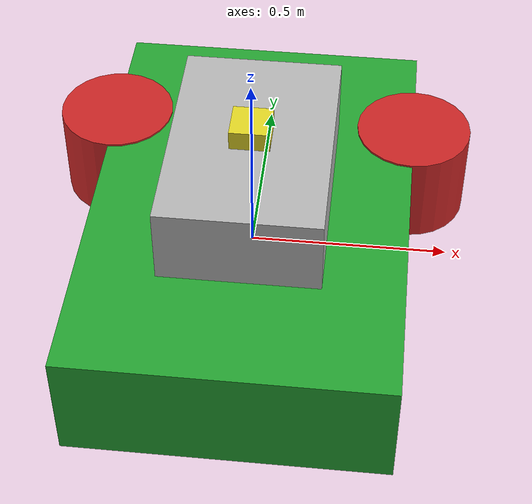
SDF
<sdf version='1.7'>
  <model name='car_HW5'>
    <link name='car_body'>
      <inertial>
        <pose>0 0 0 0 -0 0</pose>
        <mass>2.88</mass>
        <inertia>
          <ixx>0.3672</ixx>
          <ixy>0</ixy>
          <ixz>0</ixz>
          <iyy>0.1752</iyy>
          <iyz>0</iyz>
          <izz>0.4992</izz>
        </inertia>
      </inertial>
      <collision name='car_body_collision'>
        <pose>0 0 0 0 -0 0</pose>
        <geometry>
          <box>
            <size>0.8 1.2 0.3</size>
          </box>
        </geometry>
        <surface>
          <friction>
            <ode>
              <mu>0</mu>
              <mu2>0</mu2>
            </ode>
            <torsional>
              <ode/>
            </torsional>
          </friction>
          <contact>
            <ode/>
          </contact>
          <bounce/>
        </surface>
      </collision>
      <visual name='car_body_visual'>
        <pose>0 0 0 0 -0 0</pose>
        <geometry>
          <box>
            <size>0.8 1.2 0.3</size>
          </box>
        </geometry>
        <material>
          <script>
            <uri>file://media/materials/scripts/gazebo.material</uri>
            <name>Gazebo/Green</name>
          </script>
        </material>
      </visual>
    </link>

    <joint name='body_to_head' type='fixed'>
      <pose relative_to='car_body'>0 0 0.25 0 0 0</pose>
      <parent>car_body</parent>
      <child>car_head</child>
    </joint>
    <link name='car_head'>
      <pose relative_to='car_body'>0 0 0.25 0 0 0</pose>
      <inertial>
        <pose>0 0 0 0 0 0</pose>
        <mass>1</mass>
        <inertia>
          <ixx>0.027</ixx>
          <ixy>0</ixy>
          <ixz>0</ixz>
          <iyy>0.015</iyy>
          <iyz>0</iyz>
          <izz>0.0312</izz>
        </inertia>
      </inertial>
      <collision name='car_head_collision'>
        <pose>0 0 0 0 0 0</pose>
        <geometry>
          <box>
            <size>0.4 0.6 0.2</size>
          </box>
        </geometry>
      </collision>
      <visual name='car_head_visual'>
        <pose>0 0 0 0 0 0</pose>
        <geometry>
          <box>
            <size>0.4 0.6 0.2</size>
          </box>
        </geometry>
      </visual>
    </link>

    <joint name='body_to_F1' type='fixed'>
      <pose relative_to='car_body'>0.4 0.3 0.03 0 0 0</pose>
      <parent>car_body</parent>
      <child>F1</child>
    </joint>
    <link name='F1'>
      <pose relative_to='car_body'>0.4 0.3 0.03 0 0 0</pose>
      <inertial>
        <pose>0 0 0 0 0 0</pose>
        <mass>1</mass>
        <inertia>
          <ixx>0.008958</ixx>
          <ixy>0</ixy>
          <ixz>0</ixz>
          <iyy>0.008958</iyy>
          <iyz>0</iyz>
          <izz>0.01125</izz>
        </inertia>
      </inertial>
      <collision name='F1_collision'>
        <pose>0 0 0 0 0 0</pose>
        <geometry>
          <cylinder>
            <length>0.25</length>
            <radius>0.15</radius>
          </cylinder>
        </geometry>
        <surface>
          <friction>
            <ode>
              <mu>0</mu>
              <mu2>0</mu2>
            </ode>
            <torsional>
              <ode/>
            </torsional>
          </friction>
          <contact>
            <ode/>
          </contact>
          <bounce/>
        </surface>
      </collision>
      <visual name='F1_visual'>
        <pose>0 0 0 0 0 0</pose>
        <geometry>
          <cylinder>
            <length>0.25</length>
            <radius>0.15</radius>
          </cylinder>
        </geometry>
        <material>
          <script>
            <uri>file://media/materials/scripts/gazebo.material</uri>
            <name>Gazebo/Red</name>
          </script>
        </material>
      </visual>
    </link>

    <joint name='body_to_F2' type='fixed'>
      <pose relative_to='car_body'>-0.4 0.3 0.03 0 0 0</pose>
      <parent>car_body</parent>
      <child>F2</child>
    </joint>
    <link name='F2'>
      <pose relative_to='car_body'>-0.4 0.3 0.03 0 0 0</pose>
      <inertial>
        <pose>0 0 0 0 0 0</pose>
        <mass>1</mass>
        <inertia>
          <ixx>0.008958</ixx>
          <ixy>0</ixy>
          <ixz>0</ixz>
          <iyy>0.008958</iyy>
          <iyz>0</iyz>
          <izz>0.01125</izz>
        </inertia>
      </inertial>
      <collision name='F1_collision'>
        <pose>0 0 0 0 0 0</pose>
        <geometry>
          <cylinder>
            <length>0.25</length>
            <radius>0.15</radius>
          </cylinder>
        </geometry>
        <surface>
          <friction>
            <ode>
              <mu>0</mu>
              <mu2>0</mu2>
            </ode>
            <torsional>
              <ode/>
            </torsional>
          </friction>
          <contact>
            <ode/>
          </contact>
          <bounce/>
        </surface>
      </collision>
      <visual name='F2_visual'>
        <pose>0 0 0 0 0 0</pose>
        <geometry>
          <cylinder>
            <length>0.25</length>
            <radius>0.15</radius>
          </cylinder>
        </geometry>
        <material>
          <script>
            <uri>file://media/materials/scripts/gazebo.material</uri>
            <name>Gazebo/Red</name>
          </script>
        </material>
      </visual>
    </link>

    <joint name='head_to_ray' type='fixed'>
      <pose relative_to='car_head'>0 0 0.125 0 0 0</pose>
      <parent>car_head</parent>
      <child>ray_sensor</child>
    </joint>
    <link name='ray_sensor'>
      <pose relative_to='car_head'>0 0 0.125 0 0 0</pose>
      <inertial>
        <pose>0 0 0 0 -0 0</pose>
        <mass>0.1</mass>
        <inertia>
          <ixx>0.00010416667</ixx>
          <ixy>0</ixy>
          <ixz>0</ixz>
          <iyy>0.00010416667</iyy>
          <iyz>0</iyz>
          <izz>0.00016666667</izz>
        </inertia>
      </inertial>
      <visual name='ray_sensor_visual'>
        <pose>0 0 0 0 0 0</pose>
        <geometry>
          <box>
            <size>0.1 0.1 0.05</size>
          </box>
        </geometry>
        <material>
          <script>
            <uri>file://media/materials/scripts/gazebo.material</uri>
            <name>Gazebo/Yellow</name>
          </script>
        </material>
      </visual>

      <sensor name="my_imu" type="imu">
        <always_on>true</always_on>
        <!-- Publish at 30 hz -->
        <update_rate>30</update_rate>
        <plugin name="my_imu_plugin" filename="libgazebo_ros_imu_sensor.so">
          <ros>
            <!-- Will publish to /imu/data -->
            <namespace>/imu</namespace>
            <remapping>~/out:=data</remapping>
          </ros>
          <!-- frame_name ommited, will be "my_link" -->
        </plugin>
        <imu>
          <enable_orientation>true</enable_orientation>
        </imu>
      </sensor>

      <!-- ray sensor -->
      <sensor name="ray_sensor_ray" type="ray">
        <visualize>true</visualize>
        <ray>
            <scan>
            <horizontal>
                <samples>180</samples>
                <resolution>1.0</resolution>
                <min_angle>-3.1416</min_angle>
                <max_angle>3.1416</max_angle>
            </horizontal>
            <vertical>
                <samples>1</samples>
                <resolution>1.0</resolution>
                <min_angle>0</min_angle>
                <max_angle>0</max_angle>
            </vertical>
            </scan>
            <range>
            <min>0.05</min>
            <max>50.0</max>
            </range>
        </ray>
        <always_on>true</always_on>
        <update_rate>10.0</update_rate>
        <plugin name="pc2" filename="libgazebo_ros_ray_sensor.so">
            <ros>
            <namespace>/ray</namespace>
            <argument>~/out:=pointcloud2</argument>
            </ros>
            <output_type>sensor_msgs/PointCloud2</output_type>
        </plugin>
        <plugin name="pc" filename="libgazebo_ros_ray_sensor.so">
            <ros>
            <namespace>/ray</namespace>
            <argument>~/out:=pointcloud</argument>
            </ros>
            <output_type>sensor_msgs/PointCloud</output_type>
        </plugin>
        <plugin name="laserscan" filename="libgazebo_ros_ray_sensor.so">
            <ros>
            <namespace>/ray</namespace>
            <argument>~/out:=laserscan</argument>
            </ros>
            <output_type>sensor_msgs/LaserScan</output_type>
        </plugin>
        <plugin name="range" filename="libgazebo_ros_ray_sensor.so">
            <ros>
            <namespace>/ray</namespace>
            <argument>~/out:=range</argument>
            </ros>
            <output_type>sensor_msgs/Range</output_type>
        </plugin>
      </sensor>

    </link>

    <plugin name="gazebo_ros_force" filename="libgazebo_ros_force.so">
      <ros>
        <namespace>/Final/ForceInput</namespace>
        <remapping>gazebo_ros_force:=F1</remapping>
      </ros>
      <link_name>F1</link_name>
      <force_frame>link</force_frame>
    </plugin>

    <plugin name="gazebo_ros_force" filename="libgazebo_ros_force.so">
      <ros>
        <namespace>/Final/ForceInput</namespace>
        <remapping>gazebo_ros_force:=F2</remapping>
      </ros>
      <link_name>F2</link_name>
      <force_frame>link</force_frame>
    </plugin>

  </model>
</sdf>
